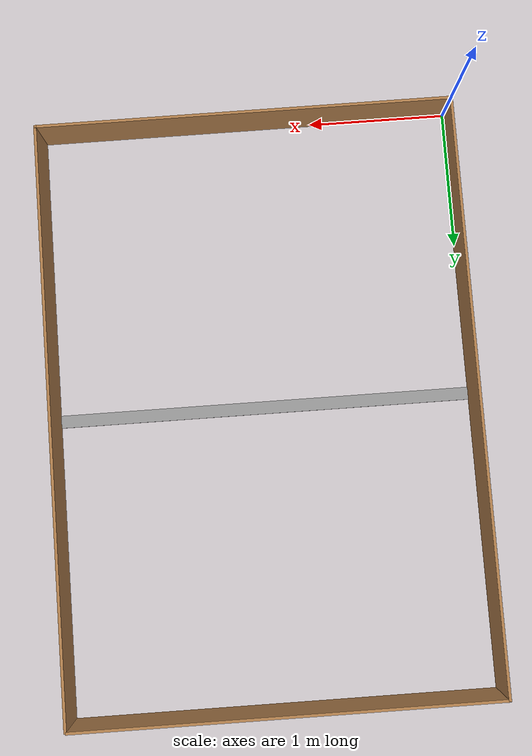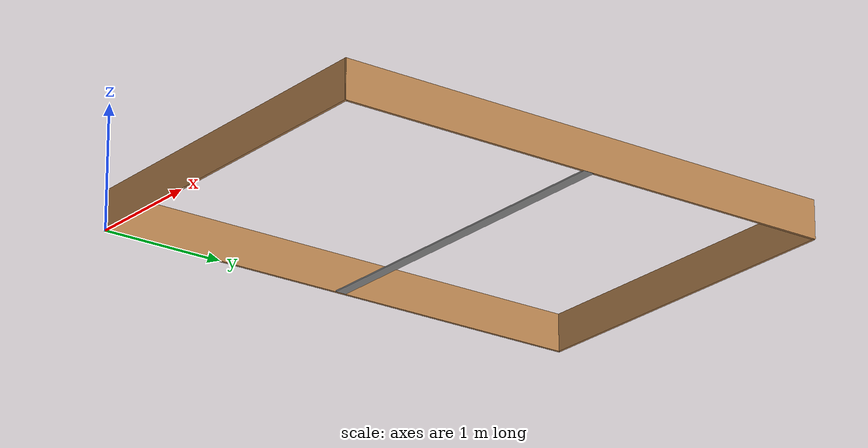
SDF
<?xml version='1.0'?>
<sdf version='1.7'>
  <model name='DEBI_world'>
    <pose>1.48149 2.105 0 0 -0 0</pose>
    <link name='Wall_12'>
      <collision name='Wall_12_Collision'>
        <geometry>
          <box>
            <size>2.997 0.02 0.31</size>
          </box>
        </geometry>
        <pose>0 0 0.155 0 -0 0</pose>
      </collision>
      <visual name='Wall_12_Visual'>
        <pose>0 0 0.155 0 -0 0</pose>
        <geometry>
          <box>
            <size>2.997 0.02 0.31</size>
          </box>
        </geometry>
        <material>
          <script>
            <uri>file://media/materials/scripts/gazebo.material</uri>
            <name>Gazebo/Wood</name>
          </script>
          <ambient>1 1 1 1</ambient>
        </material>
        <meta>
          <layer>0</layer>
        </meta>
      </visual>
      <pose>0.007012 -2.1035 0 0 -0 0.001008</pose>
    </link>
    <link name='Wall_16'>
      <collision name='Wall_16_Collision'>
        <geometry>
          <box>
            <size>4.23002 0.02 0.31</size>
          </box>
        </geometry>
        <pose>0 0 0.155 0 -0 0</pose>
      </collision>
      <visual name='Wall_16_Visual'>
        <pose>0 0 0.155 0 -0 0</pose>
        <geometry>
          <box>
            <size>4.23002 0.02 0.31</size>
          </box>
        </geometry>
        <material>
          <script>
            <uri>file://media/materials/scripts/gazebo.material</uri>
            <name>Gazebo/Wood</name>
          </script>
          <ambient>1 1 1 1</ambient>
        </material>
        <meta>
          <layer>0</layer>
        </meta>
      </visual>
      <pose>-1.48849 0 0 0 -0 1.57412</pose>
    </link>
    <link name='Wall_18'>
      <collision name='Wall_18_Collision'>
        <geometry>
          <box>
            <size>4.22 0.02 0.31</size>
          </box>
        </geometry>
        <pose>0 0 0.155 0 -0 0</pose>
      </collision>
      <visual name='Wall_18_Visual'>
        <pose>0 0 0.155 0 -0 0</pose>
        <geometry>
          <box>
            <size>4.22 0.02 0.31</size>
          </box>
        </geometry>
        <material>
          <script>
            <uri>file://media/materials/scripts/gazebo.material</uri>
            <name>Gazebo/Wood</name>
          </script>
          <ambient>1 1 1 1</ambient>
        </material>
        <meta>
          <layer>0</layer>
        </meta>
      </visual>
      <pose>1.49551 -0.002 0 0 -0 1.5708</pose>
    </link>
    <link name='Wall_20'>
      <collision name='Wall_20_Collision'>
        <geometry>
          <box>
            <size>3 0.02 0.31</size>
          </box>
        </geometry>
        <pose>0 0 0.155 0 -0 0</pose>
      </collision>
      <visual name='Wall_20_Visual'>
        <pose>0 0 0.155 0 -0 0</pose>
        <geometry>
          <box>
            <size>3 0.02 0.31</size>
          </box>
        </geometry>
        <material>
          <script>
            <uri>file://media/materials/scripts/gazebo.material</uri>
            <name>Gazebo/Wood</name>
          </script>
          <ambient>1 1 1 1</ambient>
        </material>
        <meta>
          <layer>0</layer>
        </meta>
      </visual>
      <pose>-0.005488 2.105 0 0 -0 0</pose>
    </link>
    <link name='Wall_22'>
      <collision name='Wall_22_Collision'>
        <geometry>
          <box>
            <size>3 0.09 0.01</size>
          </box>
        </geometry>
        <pose>0 0 0.005 0 -0 0</pose>
      </collision>
      <visual name='Wall_22_Visual'>
        <pose>0 0 0.005 0 -0 0</pose>
        <geometry>
          <box>
            <size>3 0.09 0.01</size>
          </box>
        </geometry>
        <material>
          <script>
            <uri>file://media/materials/scripts/gazebo.material</uri>
            <name>Gazebo/Grey</name>
          </script>
          <ambient>1 1 1 1</ambient>
        </material>
        <meta>
          <layer>0</layer>
        </meta>
      </visual>
      <pose>0.004512 -0.005 0 0 -0 0</pose>
    </link>
    <static>1</static>
  </model>
</sdf>
